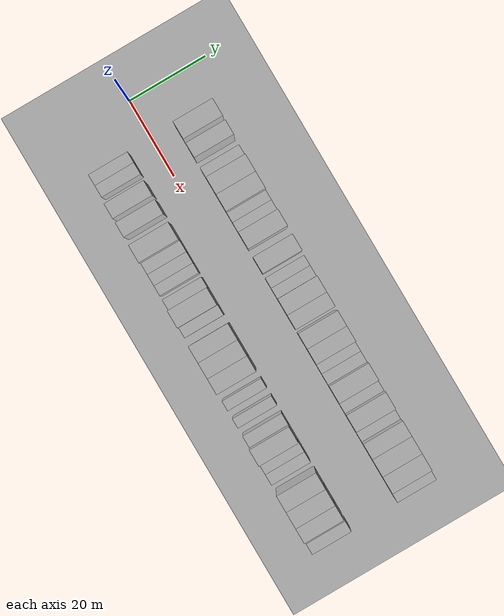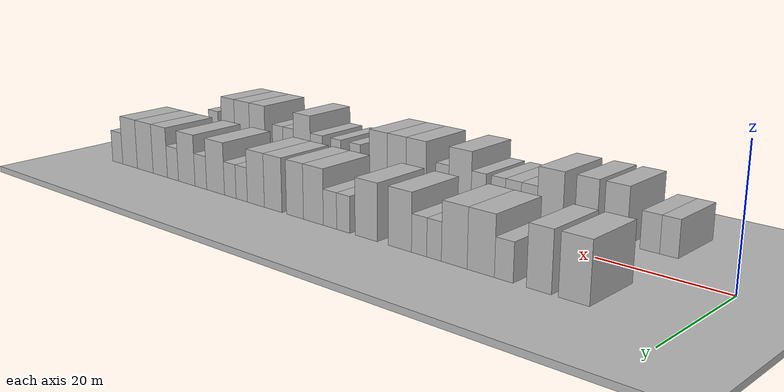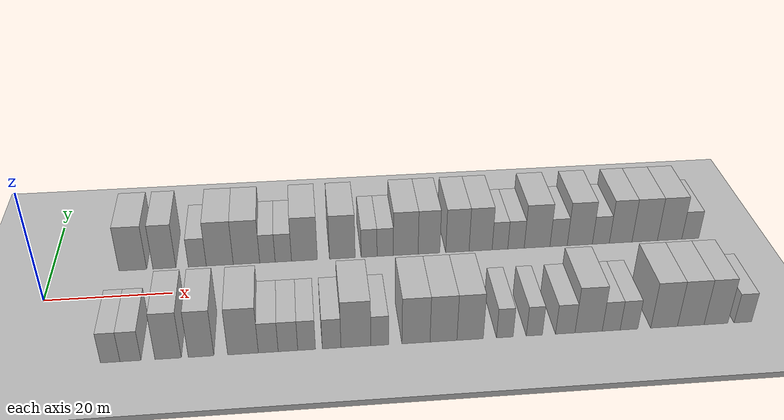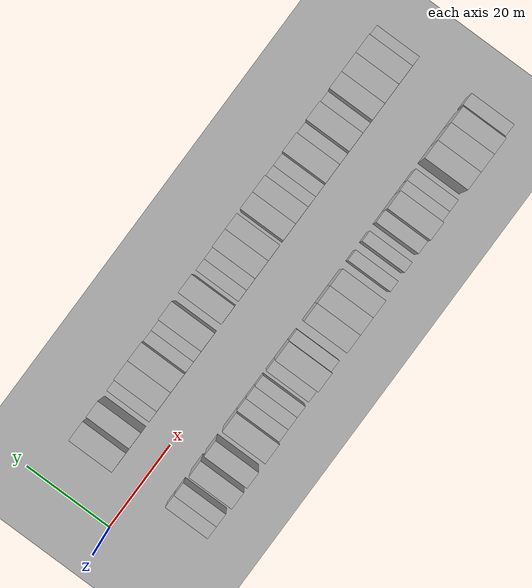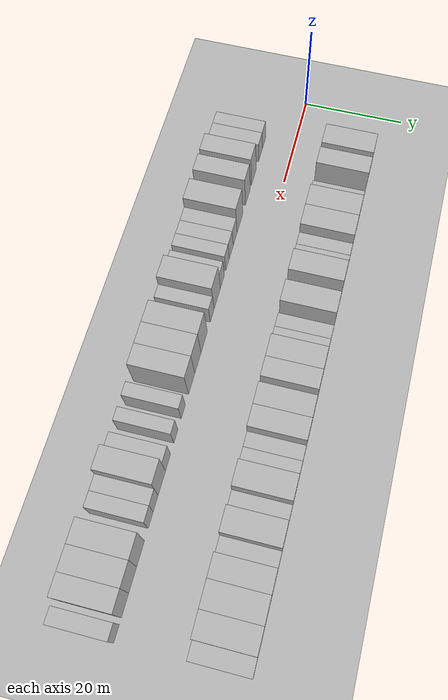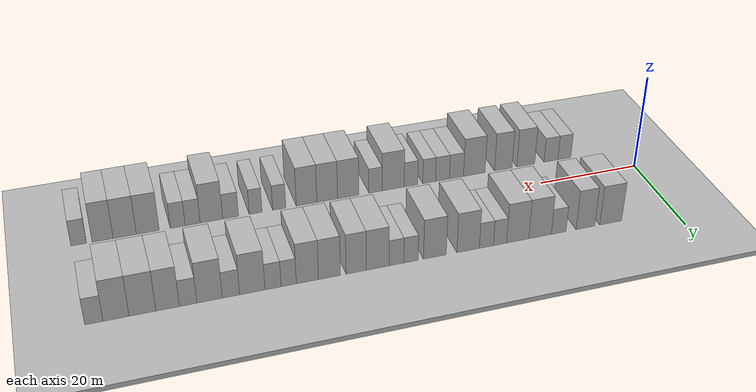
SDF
<sdf version="1.6">
 <world name="default">
  <include><name>ground_plane_1</name><uri>model://HANNAS_ground_plane</uri></include>
  <include>
   <name>ground_plane_2</name>
   <uri>model://HANNAS_ground_plane</uri>
   <pose>100 0 0  0 0 0</pose>
  </include>
  <model name="building_1">
   <static>1</static>
   <pose>13.2167 11.0000 0 0.000000 0.000000 1.570796</pose>
   <link name="link">
    <pose>0 0 4.50 0 0 0</pose>
    <collision name="collision"><geometry><box><size>10.0000 4.4334 9.0000</size></box></geometry></collision>
    <visual name="visual">
     <cast_shadows>0</cast_shadows>
     <geometry><box><size>10.0000 4.4334 9.0000</size></box></geometry>
     <material>
      <script>
       <uri>model://HANNAS_wall/materials/scripts</uri>
       <uri>model://HANNAS_wall/materials/textures</uri>
       <name>vrc/HANNAS_wall</name>
      </script>
     </material>
    </visual>
   </link>
  </model>
  <model name="building_2">
   <static>1</static>
   <pose>18.2881 11.0000 0 0.000000 0.000000 1.570796</pose>
   <link name="link">
    <pose>0 0 4.50 0 0 0</pose>
    <collision name="collision"><geometry><box><size>10.0000 3.7094 9.0000</size></box></geometry></collision>
    <visual name="visual">
     <cast_shadows>0</cast_shadows>
     <geometry><box><size>10.0000 3.7094 9.0000</size></box></geometry>
     <material>
      <script>
       <uri>model://HANNAS_wall/materials/scripts</uri>
       <uri>model://HANNAS_wall/materials/textures</uri>
       <name>vrc/HANNAS_wall</name>
      </script>
     </material>
    </visual>
   </link>
  </model>
  <model name="building_3">
   <static>1</static>
   <pose>23.5976 11.0000 0 0.000000 0.000000 1.570796</pose>
   <link name="link">
    <pose>0 0 3.00 0 0 0</pose>
    <collision name="collision"><geometry><box><size>10.0000 2.9096 6.0000</size></box></geometry></collision>
    <visual name="visual">
     <cast_shadows>0</cast_shadows>
     <geometry><box><size>10.0000 2.9096 6.0000</size></box></geometry>
     <material>
      <script>
       <uri>model://HANNAS_wall/materials/scripts</uri>
       <uri>model://HANNAS_wall/materials/textures</uri>
       <name>vrc/HANNAS_wall</name>
      </script>
     </material>
    </visual>
   </link>
  </model>
  <model name="building_4">
   <static>1</static>
   <pose>27.2421 11.0000 0 0.000000 0.000000 1.570796</pose>
   <link name="link">
    <pose>0 0 4.50 0 0 0</pose>
    <collision name="collision"><geometry><box><size>10.0000 4.3795 9.0000</size></box></geometry></collision>
    <visual name="visual">
     <cast_shadows>0</cast_shadows>
     <geometry><box><size>10.0000 4.3795 9.0000</size></box></geometry>
     <material>
      <script>
       <uri>model://HANNAS_wall/materials/scripts</uri>
       <uri>model://HANNAS_wall/materials/textures</uri>
       <name>vrc/HANNAS_wall</name>
      </script>
     </material>
    </visual>
   </link>
  </model>
  <model name="building_5">
   <static>1</static>
   <pose>31.5872 11.0000 0 0.000000 0.000000 1.570796</pose>
   <link name="link">
    <pose>0 0 4.50 0 0 0</pose>
    <collision name="collision"><geometry><box><size>10.0000 4.3107 9.0000</size></box></geometry></collision>
    <visual name="visual">
     <cast_shadows>0</cast_shadows>
     <geometry><box><size>10.0000 4.3107 9.0000</size></box></geometry>
     <material>
      <script>
       <uri>model://HANNAS_wall/materials/scripts</uri>
       <uri>model://HANNAS_wall/materials/textures</uri>
       <name>vrc/HANNAS_wall</name>
      </script>
     </material>
    </visual>
   </link>
  </model>
  <model name="building_6">
   <static>1</static>
   <pose>35.0045 11.0000 0 0.000000 0.000000 1.570796</pose>
   <link name="link">
    <pose>0 0 3.00 0 0 0</pose>
    <collision name="collision"><geometry><box><size>10.0000 2.5238 6.0000</size></box></geometry></collision>
    <visual name="visual">
     <cast_shadows>0</cast_shadows>
     <geometry><box><size>10.0000 2.5238 6.0000</size></box></geometry>
     <material>
      <script>
       <uri>model://HANNAS_wall/materials/scripts</uri>
       <uri>model://HANNAS_wall/materials/textures</uri>
       <name>vrc/HANNAS_wall</name>
      </script>
     </material>
    </visual>
   </link>
  </model>
  <model name="building_7">
   <static>1</static>
   <pose>37.6075 11.0000 0 0.000000 0.000000 1.570796</pose>
   <link name="link">
    <pose>0 0 3.00 0 0 0</pose>
    <collision name="collision"><geometry><box><size>10.0000 2.6823 6.0000</size></box></geometry></collision>
    <visual name="visual">
     <cast_shadows>0</cast_shadows>
     <geometry><box><size>10.0000 2.6823 6.0000</size></box></geometry>
     <material>
      <script>
       <uri>model://HANNAS_wall/materials/scripts</uri>
       <uri>model://HANNAS_wall/materials/textures</uri>
       <name>vrc/HANNAS_wall</name>
      </script>
     </material>
    </visual>
   </link>
  </model>
  <model name="building_8">
   <static>1</static>
   <pose>41.0759 11.0000 0 0.000000 0.000000 1.570796</pose>
   <link name="link">
    <pose>0 0 4.50 0 0 0</pose>
    <collision name="collision"><geometry><box><size>10.0000 4.2544 9.0000</size></box></geometry></collision>
    <visual name="visual">
     <cast_shadows>0</cast_shadows>
     <geometry><box><size>10.0000 4.2544 9.0000</size></box></geometry>
     <material>
      <script>
       <uri>model://HANNAS_wall/materials/scripts</uri>
       <uri>model://HANNAS_wall/materials/textures</uri>
       <name>vrc/HANNAS_wall</name>
      </script>
     </material>
    </visual>
   </link>
  </model>
  <model name="building_9">
   <static>1</static>
   <pose>47.3230 11.0000 0 0.000000 0.000000 1.570796</pose>
   <link name="link">
    <pose>0 0 4.50 0 0 0</pose>
    <collision name="collision"><geometry><box><size>10.0000 4.2398 9.0000</size></box></geometry></collision>
    <visual name="visual">
     <cast_shadows>0</cast_shadows>
     <geometry><box><size>10.0000 4.2398 9.0000</size></box></geometry>
     <material>
      <script>
       <uri>model://HANNAS_wall/materials/scripts</uri>
       <uri>model://HANNAS_wall/materials/textures</uri>
       <name>vrc/HANNAS_wall</name>
      </script>
     </material>
    </visual>
   </link>
  </model>
  <model name="building_10">
   <static>1</static>
   <pose>51.7588 11.0000 0 0.000000 0.000000 1.570796</pose>
   <link name="link">
    <pose>0 0 3.00 0 0 0</pose>
    <collision name="collision"><geometry><box><size>10.0000 2.6318 6.0000</size></box></geometry></collision>
    <visual name="visual">
     <cast_shadows>0</cast_shadows>
     <geometry><box><size>10.0000 2.6318 6.0000</size></box></geometry>
     <material>
      <script>
       <uri>model://HANNAS_wall/materials/scripts</uri>
       <uri>model://HANNAS_wall/materials/textures</uri>
       <name>vrc/HANNAS_wall</name>
      </script>
     </material>
    </visual>
   </link>
  </model>
  <model name="building_11">
   <static>1</static>
   <pose>54.4288 11.0000 0 0.000000 0.000000 1.570796</pose>
   <link name="link">
    <pose>0 0 3.00 0 0 0</pose>
    <collision name="collision"><geometry><box><size>10.0000 2.7084 6.0000</size></box></geometry></collision>
    <visual name="visual">
     <cast_shadows>0</cast_shadows>
     <geometry><box><size>10.0000 2.7084 6.0000</size></box></geometry>
     <material>
      <script>
       <uri>model://HANNAS_wall/materials/scripts</uri>
       <uri>model://HANNAS_wall/materials/textures</uri>
       <name>vrc/HANNAS_wall</name>
      </script>
     </material>
    </visual>
   </link>
  </model>
  <model name="building_12">
   <static>1</static>
   <pose>57.8506 11.0000 0 0.000000 0.000000 1.570796</pose>
   <link name="link">
    <pose>0 0 4.50 0 0 0</pose>
    <collision name="collision"><geometry><box><size>10.0000 4.1352 9.0000</size></box></geometry></collision>
    <visual name="visual">
     <cast_shadows>0</cast_shadows>
     <geometry><box><size>10.0000 4.1352 9.0000</size></box></geometry>
     <material>
      <script>
       <uri>model://HANNAS_wall/materials/scripts</uri>
       <uri>model://HANNAS_wall/materials/textures</uri>
       <name>vrc/HANNAS_wall</name>
      </script>
     </material>
    </visual>
   </link>
  </model>
  <model name="building_13">
   <static>1</static>
   <pose>61.7395 11.0000 0 0.000000 0.000000 1.570796</pose>
   <link name="link">
    <pose>0 0 4.50 0 0 0</pose>
    <collision name="collision"><geometry><box><size>10.0000 3.6426 9.0000</size></box></geometry></collision>
    <visual name="visual">
     <cast_shadows>0</cast_shadows>
     <geometry><box><size>10.0000 3.6426 9.0000</size></box></geometry>
     <material>
      <script>
       <uri>model://HANNAS_wall/materials/scripts</uri>
       <uri>model://HANNAS_wall/materials/textures</uri>
       <name>vrc/HANNAS_wall</name>
      </script>
     </material>
    </visual>
   </link>
  </model>
  <model name="building_14">
   <static>1</static>
   <pose>66.5203 11.0000 0 0.000000 0.000000 1.570796</pose>
   <link name="link">
    <pose>0 0 4.50 0 0 0</pose>
    <collision name="collision"><geometry><box><size>10.0000 3.9189 9.0000</size></box></geometry></collision>
    <visual name="visual">
     <cast_shadows>0</cast_shadows>
     <geometry><box><size>10.0000 3.9189 9.0000</size></box></geometry>
     <material>
      <script>
       <uri>model://HANNAS_wall/materials/scripts</uri>
       <uri>model://HANNAS_wall/materials/textures</uri>
       <name>vrc/HANNAS_wall</name>
      </script>
     </material>
    </visual>
   </link>
  </model>
  <model name="building_15">
   <static>1</static>
   <pose>70.4314 11.0000 0 0.000000 0.000000 1.570796</pose>
   <link name="link">
    <pose>0 0 4.50 0 0 0</pose>
    <collision name="collision"><geometry><box><size>10.0000 3.9034 9.0000</size></box></geometry></collision>
    <visual name="visual">
     <cast_shadows>0</cast_shadows>
     <geometry><box><size>10.0000 3.9034 9.0000</size></box></geometry>
     <material>
      <script>
       <uri>model://HANNAS_wall/materials/scripts</uri>
       <uri>model://HANNAS_wall/materials/textures</uri>
       <name>vrc/HANNAS_wall</name>
      </script>
     </material>
    </visual>
   </link>
  </model>
  <model name="building_16">
   <static>1</static>
   <pose>73.7122 11.0000 0 0.000000 0.000000 1.570796</pose>
   <link name="link">
    <pose>0 0 3.00 0 0 0</pose>
    <collision name="collision"><geometry><box><size>10.0000 2.6582 6.0000</size></box></geometry></collision>
    <visual name="visual">
     <cast_shadows>0</cast_shadows>
     <geometry><box><size>10.0000 2.6582 6.0000</size></box></geometry>
     <material>
      <script>
       <uri>model://HANNAS_wall/materials/scripts</uri>
       <uri>model://HANNAS_wall/materials/textures</uri>
       <name>vrc/HANNAS_wall</name>
      </script>
     </material>
    </visual>
   </link>
  </model>
  <model name="building_17">
   <static>1</static>
   <pose>76.4363 11.0000 0 0.000000 0.000000 1.570796</pose>
   <link name="link">
    <pose>0 0 3.00 0 0 0</pose>
    <collision name="collision"><geometry><box><size>10.0000 2.7899 6.0000</size></box></geometry></collision>
    <visual name="visual">
     <cast_shadows>0</cast_shadows>
     <geometry><box><size>10.0000 2.7899 6.0000</size></box></geometry>
     <material>
      <script>
       <uri>model://HANNAS_wall/materials/scripts</uri>
       <uri>model://HANNAS_wall/materials/textures</uri>
       <name>vrc/HANNAS_wall</name>
      </script>
     </material>
    </visual>
   </link>
  </model>
  <model name="building_18">
   <static>1</static>
   <pose>80.0276 11.0000 0 0.000000 0.000000 1.570796</pose>
   <link name="link">
    <pose>0 0 4.50 0 0 0</pose>
    <collision name="collision"><geometry><box><size>10.0000 4.3927 9.0000</size></box></geometry></collision>
    <visual name="visual">
     <cast_shadows>0</cast_shadows>
     <geometry><box><size>10.0000 4.3927 9.0000</size></box></geometry>
     <material>
      <script>
       <uri>model://HANNAS_wall/materials/scripts</uri>
       <uri>model://HANNAS_wall/materials/textures</uri>
       <name>vrc/HANNAS_wall</name>
      </script>
     </material>
    </visual>
   </link>
  </model>
  <model name="building_19">
   <static>1</static>
   <pose>83.7007 11.0000 0 0.000000 0.000000 1.570796</pose>
   <link name="link">
    <pose>0 0 3.00 0 0 0</pose>
    <collision name="collision"><geometry><box><size>10.0000 2.9536 6.0000</size></box></geometry></collision>
    <visual name="visual">
     <cast_shadows>0</cast_shadows>
     <geometry><box><size>10.0000 2.9536 6.0000</size></box></geometry>
     <material>
      <script>
       <uri>model://HANNAS_wall/materials/scripts</uri>
       <uri>model://HANNAS_wall/materials/textures</uri>
       <name>vrc/HANNAS_wall</name>
      </script>
     </material>
    </visual>
   </link>
  </model>
  <model name="building_20">
   <static>1</static>
   <pose>87.3337 11.0000 0 0.000000 0.000000 1.570796</pose>
   <link name="link">
    <pose>0 0 4.50 0 0 0</pose>
    <collision name="collision"><geometry><box><size>10.0000 4.3124 9.0000</size></box></geometry></collision>
    <visual name="visual">
     <cast_shadows>0</cast_shadows>
     <geometry><box><size>10.0000 4.3124 9.0000</size></box></geometry>
     <material>
      <script>
       <uri>model://HANNAS_wall/materials/scripts</uri>
       <uri>model://HANNAS_wall/materials/textures</uri>
       <name>vrc/HANNAS_wall</name>
      </script>
     </material>
    </visual>
   </link>
  </model>
  <model name="building_21">
   <static>1</static>
   <pose>90.9545 11.0000 0 0.000000 0.000000 1.570796</pose>
   <link name="link">
    <pose>0 0 3.00 0 0 0</pose>
    <collision name="collision"><geometry><box><size>10.0000 2.9293 6.0000</size></box></geometry></collision>
    <visual name="visual">
     <cast_shadows>0</cast_shadows>
     <geometry><box><size>10.0000 2.9293 6.0000</size></box></geometry>
     <material>
      <script>
       <uri>model://HANNAS_wall/materials/scripts</uri>
       <uri>model://HANNAS_wall/materials/textures</uri>
       <name>vrc/HANNAS_wall</name>
      </script>
     </material>
    </visual>
   </link>
  </model>
  <model name="building_22">
   <static>1</static>
   <pose>94.3725 11.0000 0 0.000000 0.000000 1.570796</pose>
   <link name="link">
    <pose>0 0 4.50 0 0 0</pose>
    <collision name="collision"><geometry><box><size>10.0000 3.9065 9.0000</size></box></geometry></collision>
    <visual name="visual">
     <cast_shadows>0</cast_shadows>
     <geometry><box><size>10.0000 3.9065 9.0000</size></box></geometry>
     <material>
      <script>
       <uri>model://HANNAS_wall/materials/scripts</uri>
       <uri>model://HANNAS_wall/materials/textures</uri>
       <name>vrc/HANNAS_wall</name>
      </script>
     </material>
    </visual>
   </link>
  </model>
  <model name="building_23">
   <static>1</static>
   <pose>98.5357 11.0000 0 0.000000 0.000000 1.570796</pose>
   <link name="link">
    <pose>0 0 4.50 0 0 0</pose>
    <collision name="collision"><geometry><box><size>10.0000 4.4200 9.0000</size></box></geometry></collision>
    <visual name="visual">
     <cast_shadows>0</cast_shadows>
     <geometry><box><size>10.0000 4.4200 9.0000</size></box></geometry>
     <material>
      <script>
       <uri>model://HANNAS_wall/materials/scripts</uri>
       <uri>model://HANNAS_wall/materials/textures</uri>
       <name>vrc/HANNAS_wall</name>
      </script>
     </material>
    </visual>
   </link>
  </model>
  <model name="building_24">
   <static>1</static>
   <pose>102.8661 11.0000 0 0.000000 0.000000 1.570796</pose>
   <link name="link">
    <pose>0 0 4.50 0 0 0</pose>
    <collision name="collision"><geometry><box><size>10.0000 4.2409 9.0000</size></box></geometry></collision>
    <visual name="visual">
     <cast_shadows>0</cast_shadows>
     <geometry><box><size>10.0000 4.2409 9.0000</size></box></geometry>
     <material>
      <script>
       <uri>model://HANNAS_wall/materials/scripts</uri>
       <uri>model://HANNAS_wall/materials/textures</uri>
       <name>vrc/HANNAS_wall</name>
      </script>
     </material>
    </visual>
   </link>
  </model>
  <model name="building_25">
   <static>1</static>
   <pose>106.4686 11.0000 0 0.000000 0.000000 1.570796</pose>
   <link name="link">
    <pose>0 0 3.00 0 0 0</pose>
    <collision name="collision"><geometry><box><size>10.0000 2.9640 6.0000</size></box></geometry></collision>
    <visual name="visual">
     <cast_shadows>0</cast_shadows>
     <geometry><box><size>10.0000 2.9640 6.0000</size></box></geometry>
     <material>
      <script>
       <uri>model://HANNAS_wall/materials/scripts</uri>
       <uri>model://HANNAS_wall/materials/textures</uri>
       <name>vrc/HANNAS_wall</name>
      </script>
     </material>
    </visual>
   </link>
  </model>
  <model name="building_50">
   <static>1</static>
   <pose>12.3934 -11.0000 0 0.000000 0.000000 1.570796</pose>
   <link name="link">
    <pose>0 0 3.00 0 0 0</pose>
    <collision name="collision"><geometry><box><size>10.0000 2.7869 6.0000</size></box></geometry></collision>
    <visual name="visual">
     <cast_shadows>0</cast_shadows>
     <geometry><box><size>10.0000 2.7869 6.0000</size></box></geometry>
     <material>
      <script>
       <uri>model://HANNAS_wall/materials/scripts</uri>
       <uri>model://HANNAS_wall/materials/textures</uri>
       <name>vrc/HANNAS_wall</name>
      </script>
     </material>
    </visual>
   </link>
  </model>
  <model name="building_51">
   <static>1</static>
   <pose>15.2828 -11.0000 0 0.000000 0.000000 1.570796</pose>
   <link name="link">
    <pose>0 0 3.00 0 0 0</pose>
    <collision name="collision"><geometry><box><size>10.0000 2.9919 6.0000</size></box></geometry></collision>
    <visual name="visual">
     <cast_shadows>0</cast_shadows>
     <geometry><box><size>10.0000 2.9919 6.0000</size></box></geometry>
     <material>
      <script>
       <uri>model://HANNAS_wall/materials/scripts</uri>
       <uri>model://HANNAS_wall/materials/textures</uri>
       <name>vrc/HANNAS_wall</name>
      </script>
     </material>
    </visual>
   </link>
  </model>
  <model name="building_52">
   <static>1</static>
   <pose>20.6731 -11.0000 0 0.000000 0.000000 1.570796</pose>
   <link name="link">
    <pose>0 0 4.50 0 0 0</pose>
    <collision name="collision"><geometry><box><size>10.0000 3.7887 9.0000</size></box></geometry></collision>
    <visual name="visual">
     <cast_shadows>0</cast_shadows>
     <geometry><box><size>10.0000 3.7887 9.0000</size></box></geometry>
     <material>
      <script>
       <uri>model://HANNAS_wall/materials/scripts</uri>
       <uri>model://HANNAS_wall/materials/textures</uri>
       <name>vrc/HANNAS_wall</name>
      </script>
     </material>
    </visual>
   </link>
  </model>
  <model name="building_53">
   <static>1</static>
   <pose>25.4094 -11.0000 0 0.000000 0.000000 1.570796</pose>
   <link name="link">
    <pose>0 0 4.50 0 0 0</pose>
    <collision name="collision"><geometry><box><size>10.0000 3.6839 9.0000</size></box></geometry></collision>
    <visual name="visual">
     <cast_shadows>0</cast_shadows>
     <geometry><box><size>10.0000 3.6839 9.0000</size></box></geometry>
     <material>
      <script>
       <uri>model://HANNAS_wall/materials/scripts</uri>
       <uri>model://HANNAS_wall/materials/textures</uri>
       <name>vrc/HANNAS_wall</name>
      </script>
     </material>
    </visual>
   </link>
  </model>
  <model name="building_54">
   <static>1</static>
   <pose>31.4767 -11.0000 0 0.000000 0.000000 1.570796</pose>
   <link name="link">
    <pose>0 0 4.50 0 0 0</pose>
    <collision name="collision"><geometry><box><size>10.0000 4.4509 9.0000</size></box></geometry></collision>
    <visual name="visual">
     <cast_shadows>0</cast_shadows>
     <geometry><box><size>10.0000 4.4509 9.0000</size></box></geometry>
     <material>
      <script>
       <uri>model://HANNAS_wall/materials/scripts</uri>
       <uri>model://HANNAS_wall/materials/textures</uri>
       <name>vrc/HANNAS_wall</name>
      </script>
     </material>
    </visual>
   </link>
  </model>
  <model name="building_55">
   <static>1</static>
   <pose>35.1486 -11.0000 0 0.000000 0.000000 1.570796</pose>
   <link name="link">
    <pose>0 0 3.00 0 0 0</pose>
    <collision name="collision"><geometry><box><size>10.0000 2.8928 6.0000</size></box></geometry></collision>
    <visual name="visual">
     <cast_shadows>0</cast_shadows>
     <geometry><box><size>10.0000 2.8928 6.0000</size></box></geometry>
     <material>
      <script>
       <uri>model://HANNAS_wall/materials/scripts</uri>
       <uri>model://HANNAS_wall/materials/textures</uri>
       <name>vrc/HANNAS_wall</name>
      </script>
     </material>
    </visual>
   </link>
  </model>
  <model name="building_56">
   <static>1</static>
   <pose>38.0263 -11.0000 0 0.000000 0.000000 1.570796</pose>
   <link name="link">
    <pose>0 0 3.00 0 0 0</pose>
    <collision name="collision"><geometry><box><size>10.0000 2.8627 6.0000</size></box></geometry></collision>
    <visual name="visual">
     <cast_shadows>0</cast_shadows>
     <geometry><box><size>10.0000 2.8627 6.0000</size></box></geometry>
     <material>
      <script>
       <uri>model://HANNAS_wall/materials/scripts</uri>
       <uri>model://HANNAS_wall/materials/textures</uri>
       <name>vrc/HANNAS_wall</name>
      </script>
     </material>
    </visual>
   </link>
  </model>
  <model name="building_57">
   <static>1</static>
   <pose>40.7558 -11.0000 0 0.000000 0.000000 1.570796</pose>
   <link name="link">
    <pose>0 0 3.00 0 0 0</pose>
    <collision name="collision"><geometry><box><size>10.0000 2.5963 6.0000</size></box></geometry></collision>
    <visual name="visual">
     <cast_shadows>0</cast_shadows>
     <geometry><box><size>10.0000 2.5963 6.0000</size></box></geometry>
     <material>
      <script>
       <uri>model://HANNAS_wall/materials/scripts</uri>
       <uri>model://HANNAS_wall/materials/textures</uri>
       <name>vrc/HANNAS_wall</name>
      </script>
     </material>
    </visual>
   </link>
  </model>
  <model name="building_58">
   <static>1</static>
   <pose>44.4281 -11.0000 0 0.000000 0.000000 1.570796</pose>
   <link name="link">
    <pose>0 0 3.00 0 0 0</pose>
    <collision name="collision"><geometry><box><size>10.0000 2.7481 6.0000</size></box></geometry></collision>
    <visual name="visual">
     <cast_shadows>0</cast_shadows>
     <geometry><box><size>10.0000 2.7481 6.0000</size></box></geometry>
     <material>
      <script>
       <uri>model://HANNAS_wall/materials/scripts</uri>
       <uri>model://HANNAS_wall/materials/textures</uri>
       <name>vrc/HANNAS_wall</name>
      </script>
     </material>
    </visual>
   </link>
  </model>
  <model name="building_59">
   <static>1</static>
   <pose>48.0074 -11.0000 0 0.000000 0.000000 1.570796</pose>
   <link name="link">
    <pose>0 0 4.50 0 0 0</pose>
    <collision name="collision"><geometry><box><size>10.0000 4.4106 9.0000</size></box></geometry></collision>
    <visual name="visual">
     <cast_shadows>0</cast_shadows>
     <geometry><box><size>10.0000 4.4106 9.0000</size></box></geometry>
     <material>
      <script>
       <uri>model://HANNAS_wall/materials/scripts</uri>
       <uri>model://HANNAS_wall/materials/textures</uri>
       <name>vrc/HANNAS_wall</name>
      </script>
     </material>
    </visual>
   </link>
  </model>
  <model name="building_60">
   <static>1</static>
   <pose>51.5189 -11.0000 0 0.000000 0.000000 1.570796</pose>
   <link name="link">
    <pose>0 0 3.00 0 0 0</pose>
    <collision name="collision"><geometry><box><size>10.0000 2.6123 6.0000</size></box></geometry></collision>
    <visual name="visual">
     <cast_shadows>0</cast_shadows>
     <geometry><box><size>10.0000 2.6123 6.0000</size></box></geometry>
     <material>
      <script>
       <uri>model://HANNAS_wall/materials/scripts</uri>
       <uri>model://HANNAS_wall/materials/textures</uri>
       <name>vrc/HANNAS_wall</name>
      </script>
     </material>
    </visual>
   </link>
  </model>
  <model name="building_61">
   <static>1</static>
   <pose>56.9161 -11.0000 0 0.000000 0.000000 1.570796</pose>
   <link name="link">
    <pose>0 0 4.50 0 0 0</pose>
    <collision name="collision"><geometry><box><size>10.0000 4.1822 9.0000</size></box></geometry></collision>
    <visual name="visual">
     <cast_shadows>0</cast_shadows>
     <geometry><box><size>10.0000 4.1822 9.0000</size></box></geometry>
     <material>
      <script>
       <uri>model://HANNAS_wall/materials/scripts</uri>
       <uri>model://HANNAS_wall/materials/textures</uri>
       <name>vrc/HANNAS_wall</name>
      </script>
     </material>
    </visual>
   </link>
  </model>
  <model name="building_62">
   <static>1</static>
   <pose>61.0208 -11.0000 0 0.000000 0.000000 1.570796</pose>
   <link name="link">
    <pose>0 0 4.50 0 0 0</pose>
    <collision name="collision"><geometry><box><size>10.0000 4.0270 9.0000</size></box></geometry></collision>
    <visual name="visual">
     <cast_shadows>0</cast_shadows>
     <geometry><box><size>10.0000 4.0270 9.0000</size></box></geometry>
     <material>
      <script>
       <uri>model://HANNAS_wall/materials/scripts</uri>
       <uri>model://HANNAS_wall/materials/textures</uri>
       <name>vrc/HANNAS_wall</name>
      </script>
     </material>
    </visual>
   </link>
  </model>
  <model name="building_63">
   <static>1</static>
   <pose>65.0166 -11.0000 0 0.000000 0.000000 1.570796</pose>
   <link name="link">
    <pose>0 0 4.50 0 0 0</pose>
    <collision name="collision"><geometry><box><size>10.0000 3.9646 9.0000</size></box></geometry></collision>
    <visual name="visual">
     <cast_shadows>0</cast_shadows>
     <geometry><box><size>10.0000 3.9646 9.0000</size></box></geometry>
     <material>
      <script>
       <uri>model://HANNAS_wall/materials/scripts</uri>
       <uri>model://HANNAS_wall/materials/textures</uri>
       <name>vrc/HANNAS_wall</name>
      </script>
     </material>
    </visual>
   </link>
  </model>
  <model name="building_64">
   <static>1</static>
   <pose>70.2542 -11.0000 0 0.000000 0.000000 1.570796</pose>
   <link name="link">
    <pose>0 0 3.00 0 0 0</pose>
    <collision name="collision"><geometry><box><size>10.0000 2.5107 6.0000</size></box></geometry></collision>
    <visual name="visual">
     <cast_shadows>0</cast_shadows>
     <geometry><box><size>10.0000 2.5107 6.0000</size></box></geometry>
     <material>
      <script>
       <uri>model://HANNAS_wall/materials/scripts</uri>
       <uri>model://HANNAS_wall/materials/textures</uri>
       <name>vrc/HANNAS_wall</name>
      </script>
     </material>
    </visual>
   </link>
  </model>
  <model name="building_65">
   <static>1</static>
   <pose>74.7275 -11.0000 0 0.000000 0.000000 1.570796</pose>
   <link name="link">
    <pose>0 0 3.00 0 0 0</pose>
    <collision name="collision"><geometry><box><size>10.0000 2.4359 6.0000</size></box></geometry></collision>
    <visual name="visual">
     <cast_shadows>0</cast_shadows>
     <geometry><box><size>10.0000 2.4359 6.0000</size></box></geometry>
     <material>
      <script>
       <uri>model://HANNAS_wall/materials/scripts</uri>
       <uri>model://HANNAS_wall/materials/textures</uri>
       <name>vrc/HANNAS_wall</name>
      </script>
     </material>
    </visual>
   </link>
  </model>
  <model name="building_66">
   <static>1</static>
   <pose>79.4287 -11.0000 0 0.000000 0.000000 1.570796</pose>
   <link name="link">
    <pose>0 0 3.00 0 0 0</pose>
    <collision name="collision"><geometry><box><size>10.0000 2.9665 6.0000</size></box></geometry></collision>
    <visual name="visual">
     <cast_shadows>0</cast_shadows>
     <geometry><box><size>10.0000 2.9665 6.0000</size></box></geometry>
     <material>
      <script>
       <uri>model://HANNAS_wall/materials/scripts</uri>
       <uri>model://HANNAS_wall/materials/textures</uri>
       <name>vrc/HANNAS_wall</name>
      </script>
     </material>
    </visual>
   </link>
  </model>
  <model name="building_67">
   <static>1</static>
   <pose>82.9988 -11.0000 0 0.000000 0.000000 1.570796</pose>
   <link name="link">
    <pose>0 0 4.50 0 0 0</pose>
    <collision name="collision"><geometry><box><size>10.0000 4.1736 9.0000</size></box></geometry></collision>
    <visual name="visual">
     <cast_shadows>0</cast_shadows>
     <geometry><box><size>10.0000 4.1736 9.0000</size></box></geometry>
     <material>
      <script>
       <uri>model://HANNAS_wall/materials/scripts</uri>
       <uri>model://HANNAS_wall/materials/textures</uri>
       <name>vrc/HANNAS_wall</name>
      </script>
     </material>
    </visual>
   </link>
  </model>
  <model name="building_68">
   <static>1</static>
   <pose>86.4618 -11.0000 0 0.000000 0.000000 1.570796</pose>
   <link name="link">
    <pose>0 0 3.00 0 0 0</pose>
    <collision name="collision"><geometry><box><size>10.0000 2.7524 6.0000</size></box></geometry></collision>
    <visual name="visual">
     <cast_shadows>0</cast_shadows>
     <geometry><box><size>10.0000 2.7524 6.0000</size></box></geometry>
     <material>
      <script>
       <uri>model://HANNAS_wall/materials/scripts</uri>
       <uri>model://HANNAS_wall/materials/textures</uri>
       <name>vrc/HANNAS_wall</name>
      </script>
     </material>
    </visual>
   </link>
  </model>
  <model name="building_69">
   <static>1</static>
   <pose>89.2032 -11.0000 0 0.000000 0.000000 1.570796</pose>
   <link name="link">
    <pose>0 0 3.00 0 0 0</pose>
    <collision name="collision"><geometry><box><size>10.0000 2.7304 6.0000</size></box></geometry></collision>
    <visual name="visual">
     <cast_shadows>0</cast_shadows>
     <geometry><box><size>10.0000 2.7304 6.0000</size></box></geometry>
     <material>
      <script>
       <uri>model://HANNAS_wall/materials/scripts</uri>
       <uri>model://HANNAS_wall/materials/textures</uri>
       <name>vrc/HANNAS_wall</name>
      </script>
     </material>
    </visual>
   </link>
  </model>
  <model name="building_70">
   <static>1</static>
   <pose>94.6387 -11.0000 0 0.000000 0.000000 1.570796</pose>
   <link name="link">
    <pose>0 0 4.50 0 0 0</pose>
    <collision name="collision"><geometry><box><size>10.0000 4.1406 9.0000</size></box></geometry></collision>
    <visual name="visual">
     <cast_shadows>0</cast_shadows>
     <geometry><box><size>10.0000 4.1406 9.0000</size></box></geometry>
     <material>
      <script>
       <uri>model://HANNAS_wall/materials/scripts</uri>
       <uri>model://HANNAS_wall/materials/textures</uri>
       <name>vrc/HANNAS_wall</name>
      </script>
     </material>
    </visual>
   </link>
  </model>
  <model name="building_71">
   <static>1</static>
   <pose>98.7748 -11.0000 0 0.000000 0.000000 1.570796</pose>
   <link name="link">
    <pose>0 0 4.50 0 0 0</pose>
    <collision name="collision"><geometry><box><size>10.0000 4.1316 9.0000</size></box></geometry></collision>
    <visual name="visual">
     <cast_shadows>0</cast_shadows>
     <geometry><box><size>10.0000 4.1316 9.0000</size></box></geometry>
     <material>
      <script>
       <uri>model://HANNAS_wall/materials/scripts</uri>
       <uri>model://HANNAS_wall/materials/textures</uri>
       <name>vrc/HANNAS_wall</name>
      </script>
     </material>
    </visual>
   </link>
  </model>
  <model name="building_72">
   <static>1</static>
   <pose>102.6978 -11.0000 0 0.000000 0.000000 1.570796</pose>
   <link name="link">
    <pose>0 0 4.50 0 0 0</pose>
    <collision name="collision"><geometry><box><size>10.0000 3.7144 9.0000</size></box></geometry></collision>
    <visual name="visual">
     <cast_shadows>0</cast_shadows>
     <geometry><box><size>10.0000 3.7144 9.0000</size></box></geometry>
     <material>
      <script>
       <uri>model://HANNAS_wall/materials/scripts</uri>
       <uri>model://HANNAS_wall/materials/textures</uri>
       <name>vrc/HANNAS_wall</name>
      </script>
     </material>
    </visual>
   </link>
  </model>
  <model name="building_73">
   <static>1</static>
   <pose>106.9225 -11.0000 0 0.000000 0.000000 1.570796</pose>
   <link name="link">
    <pose>0 0 3.00 0 0 0</pose>
    <collision name="collision"><geometry><box><size>10.0000 2.7350 6.0000</size></box></geometry></collision>
    <visual name="visual">
     <cast_shadows>0</cast_shadows>
     <geometry><box><size>10.0000 2.7350 6.0000</size></box></geometry>
     <material>
      <script>
       <uri>model://HANNAS_wall/materials/scripts</uri>
       <uri>model://HANNAS_wall/materials/textures</uri>
       <name>vrc/HANNAS_wall</name>
      </script>
     </material>
    </visual>
   </link>
  </model>
 </world>
</sdf>
